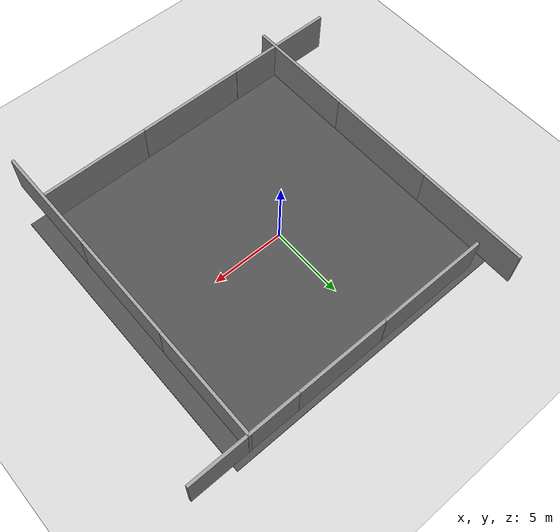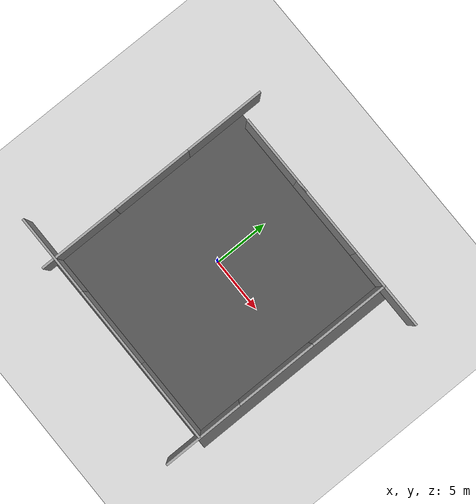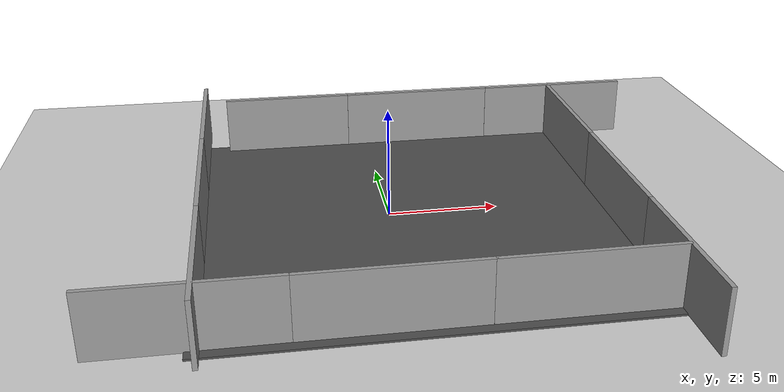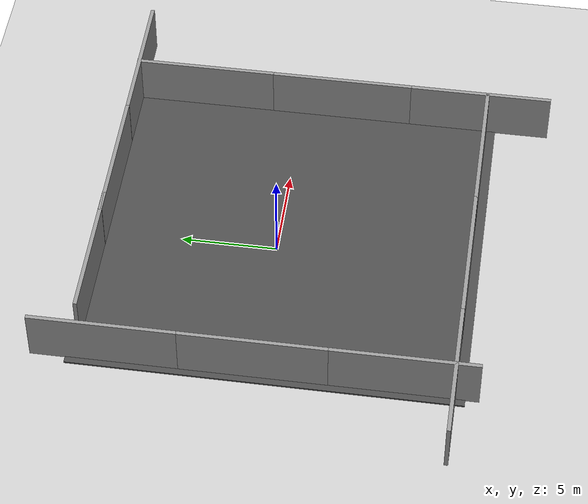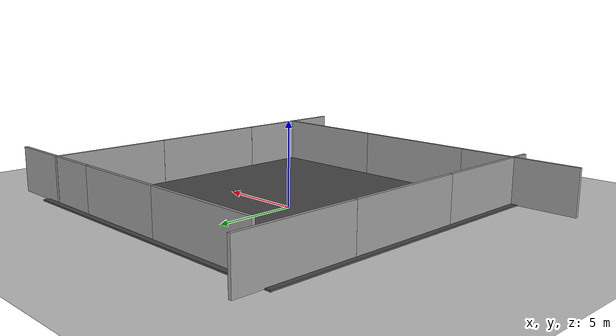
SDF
<sdf version="1.7">
 <world name="default">
  <light name="sun" type="directional">
   <pose>0 0 10 0 -0 0</pose>
   <diffuse>0.8 0.8 0.8 1</diffuse>
   <specular>0.2 0.2 0.2 1</specular>
   <attenuation>
    <range>1000</range>
    <constant>0.9</constant>
    <linear>0.01</linear>
    <quadratic>0.001</quadratic>
   </attenuation>
   <direction>-0.5 0.1 -0.9</direction>
   <spot><inner_angle>0</inner_angle><outer_angle>0</outer_angle><falloff>0</falloff></spot>
  </light>
  <model name="ground_plane">
   <static>1</static>
   <link name="link">
    <collision name="collision">
     <geometry><plane><normal>0 0 1</normal><size>100 100</size></plane></geometry>
     <surface><friction><ode><mu>100</mu><mu2>50</mu2></ode></friction></surface>
    </collision>
    <visual name="visual">
     <cast_shadows>0</cast_shadows>
     <geometry><plane><normal>0 0 1</normal><size>100 100</size></plane></geometry>
     <material>
      <script><uri>file://media/materials/scripts/gazebo.material</uri><name>Gazebo/Grey</name></script>
     </material>
    </visual>
   </link>
  </model>
  <model name="asphalt_plane">
   <pose>1.20666 -0.550621 0 0 -0 0</pose>
   <static>1</static>
   <link name="link">
    <collision name="collision"><geometry><box><size>20 20 0.1</size></box></geometry></collision>
    <visual name="visual">
     <cast_shadows>0</cast_shadows>
     <geometry><box><size>20 20 0.1</size></box></geometry>
     <material>
      <script>
       <uri>model://asphalt_plane/materials/scripts</uri>
       <uri>model://asphalt_plane/materials/textures</uri>
       <name>vrc/asphalt</name>
      </script>
     </material>
    </visual>
   </link>
  </model>
  <plugin name="ros_interface_plugin" filename="librotors_gazebo_ros_interface_plugin.so"/>
  <physics name="default_physics" default="0" type="ode">
   <ode>
    <solver>
     <type>quick</type>
     <iters>10</iters>
     <sor>1.3</sor>
     <use_dynamic_moi_rescaling>0</use_dynamic_moi_rescaling>
    </solver>
    <constraints>
     <cfm>0</cfm>
     <erp>0.2</erp>
     <contact_max_correcting_vel>100</contact_max_correcting_vel>
     <contact_surface_layer>0.001</contact_surface_layer>
    </constraints>
   </ode>
   <max_step_size>0.002</max_step_size>
   <real_time_factor>1</real_time_factor>
   <real_time_update_rate>500</real_time_update_rate>
  </physics>
  <model name="grey_wall">
   <static>1</static>
   <link name="link">
    <pose>0 0 1.4 0 -0 0</pose>
    <collision name="collision"><geometry><box><size>7.5 0.2 2.8</size></box></geometry></collision>
    <visual name="visual">
     <cast_shadows>0</cast_shadows>
     <geometry><box><size>7.5 0.2 2.8</size></box></geometry>
     <material>
      <script>
       <uri>model://grey_wall/materials/scripts</uri>
       <uri>model://grey_wall/materials/textures</uri>
       <name>vrc/grey_wall</name>
      </script>
     </material>
    </visual>
   </link>
   <pose>-8.34545 0 0 0 0 -1.57</pose>
  </model>
  <model name="grey_wall2">
   <static>1</static>
   <link name="link">
    <pose>0 0 1.4 0 -0 0</pose>
    <collision name="collision"><geometry><box><size>7.5 0.2 2.8</size></box></geometry></collision>
    <visual name="visual">
     <cast_shadows>0</cast_shadows>
     <geometry><box><size>7.5 0.2 2.8</size></box></geometry>
     <material>
      <script>
       <uri>model://grey_wall/materials/scripts</uri>
       <uri>model://grey_wall/materials/textures</uri>
       <name>vrc/grey_wall</name>
      </script>
     </material>
    </visual>
   </link>
   <pose>-3.5 9 0 0 -0 0</pose>
  </model>
  <gravity>0 0 -9.8066</gravity>
  <magnetic_field>6e-06 2.3e-05 -4.2e-05</magnetic_field>
  <atmosphere type="adiabatic"/>
  <scene><ambient>0.4 0.4 0.4 1</ambient><background>0.7 0.7 0.7 1</background><shadows>1</shadows></scene>
  <spherical_coordinates>
   <surface_model>EARTH_WGS84</surface_model>
   <latitude_deg>0</latitude_deg>
   <longitude_deg>0</longitude_deg>
   <elevation>0</elevation>
   <heading_deg>0</heading_deg>
  </spherical_coordinates>
  <model name="grey_wall_clone">
   <static>1</static>
   <link name="link">
    <pose>0 0 1.4 0 -0 0</pose>
    <collision name="collision"><geometry><box><size>7.5 0.2 2.8</size></box></geometry></collision>
    <visual name="visual">
     <cast_shadows>0</cast_shadows>
     <geometry><box><size>7.5 0.2 2.8</size></box></geometry>
     <material>
      <script>
       <uri>model://grey_wall/materials/scripts</uri>
       <uri>model://grey_wall/materials/textures</uri>
       <name>vrc/grey_wall</name>
      </script>
     </material>
    </visual>
   </link>
   <pose>-8.33504 -7.48586 0 0 0 -1.57</pose>
  </model>
  <model name="grey_wall_clone_0">
   <static>1</static>
   <link name="link">
    <pose>0 0 1.4 0 -0 0</pose>
    <collision name="collision"><geometry><box><size>7.5 0.2 2.8</size></box></geometry></collision>
    <visual name="visual">
     <cast_shadows>0</cast_shadows>
     <geometry><box><size>7.5 0.2 2.8</size></box></geometry>
     <material>
      <script>
       <uri>model://grey_wall/materials/scripts</uri>
       <uri>model://grey_wall/materials/textures</uri>
       <name>vrc/grey_wall</name>
      </script>
     </material>
    </visual>
   </link>
   <pose>-8.3498 7.49296 0 0 0 -1.57</pose>
  </model>
  <model name="grey_wall2_clone">
   <static>1</static>
   <link name="link">
    <pose>0 0 1.4 0 -0 0</pose>
    <collision name="collision"><geometry><box><size>7.5 0.2 2.8</size></box></geometry></collision>
    <visual name="visual">
     <cast_shadows>0</cast_shadows>
     <geometry><box><size>7.5 0.2 2.8</size></box></geometry>
     <material>
      <script>
       <uri>model://grey_wall/materials/scripts</uri>
       <uri>model://grey_wall/materials/textures</uri>
       <name>vrc/grey_wall</name>
      </script>
     </material>
    </visual>
   </link>
   <pose>2.81264 8.99092 0 0 -0 0</pose>
  </model>
  <model name="grey_wall2_clone_clone">
   <static>1</static>
   <link name="link">
    <pose>0 0 1.4 0 -0 0</pose>
    <collision name="collision"><geometry><box><size>7.5 0.2 2.8</size></box></geometry></collision>
    <visual name="visual">
     <cast_shadows>0</cast_shadows>
     <geometry><box><size>7.5 0.2 2.8</size></box></geometry>
     <material>
      <script>
       <uri>model://grey_wall/materials/scripts</uri>
       <uri>model://grey_wall/materials/textures</uri>
       <name>vrc/grey_wall</name>
      </script>
     </material>
    </visual>
   </link>
   <pose>10.269 8.98523 0 0 -0 0</pose>
  </model>
  <model name="grey_wall_clone_1">
   <static>1</static>
   <link name="link">
    <pose>0 0 1.4 0 -0 0</pose>
    <collision name="collision"><geometry><box><size>7.5 0.2 2.8</size></box></geometry></collision>
    <visual name="visual">
     <cast_shadows>0</cast_shadows>
     <geometry><box><size>7.5 0.2 2.8</size></box></geometry>
     <material>
      <script>
       <uri>model://grey_wall/materials/scripts</uri>
       <uri>model://grey_wall/materials/textures</uri>
       <name>vrc/grey_wall</name>
      </script>
     </material>
    </visual>
   </link>
   <pose>10.0049 5.34607 0 0 0 -1.57</pose>
  </model>
  <model name="grey_wall_clone_1_clone">
   <static>1</static>
   <link name="link">
    <pose>0 0 1.4 0 -0 0</pose>
    <collision name="collision"><geometry><box><size>7.5 0.2 2.8</size></box></geometry></collision>
    <visual name="visual">
     <cast_shadows>0</cast_shadows>
     <geometry><box><size>7.5 0.2 2.8</size></box></geometry>
     <material>
      <script>
       <uri>model://grey_wall/materials/scripts</uri>
       <uri>model://grey_wall/materials/textures</uri>
       <name>vrc/grey_wall</name>
      </script>
     </material>
    </visual>
   </link>
   <pose>10.004 -2.12753 0 0 0 -1.57</pose>
  </model>
  <model name="grey_wall_clone_1_clone_clone">
   <static>1</static>
   <link name="link">
    <pose>0 0 1.4 0 -0 0</pose>
    <collision name="collision"><geometry><box><size>7.5 0.2 2.8</size></box></geometry></collision>
    <visual name="visual">
     <cast_shadows>0</cast_shadows>
     <geometry><box><size>7.5 0.2 2.8</size></box></geometry>
     <material>
      <script>
       <uri>model://grey_wall/materials/scripts</uri>
       <uri>model://grey_wall/materials/textures</uri>
       <name>vrc/grey_wall</name>
      </script>
     </material>
    </visual>
   </link>
   <pose>10.0066 -9.61547 0 0 0 -1.57</pose>
  </model>
  <model name="grey_wall2_clone_clone_0">
   <static>1</static>
   <link name="link">
    <pose>0 0 1.4 0 -0 0</pose>
    <collision name="collision"><geometry><box><size>7.5 0.2 2.8</size></box></geometry></collision>
    <visual name="visual">
     <cast_shadows>0</cast_shadows>
     <geometry><box><size>7.5 0.2 2.8</size></box></geometry>
     <material>
      <script>
       <uri>model://grey_wall/materials/scripts</uri>
       <uri>model://grey_wall/materials/textures</uri>
       <name>vrc/grey_wall</name>
      </script>
     </material>
    </visual>
   </link>
   <pose>6.2557 -9.98533 0 0 -0 0</pose>
  </model>
  <model name="grey_wall2_clone_clone_0_clone">
   <static>1</static>
   <link name="link">
    <pose>0 0 1.4 0 -0 0</pose>
    <collision name="collision"><geometry><box><size>7.5 0.2 2.8</size></box></geometry></collision>
    <visual name="visual">
     <cast_shadows>0</cast_shadows>
     <geometry><box><size>7.5 0.2 2.8</size></box></geometry>
     <material>
      <script>
       <uri>model://grey_wall/materials/scripts</uri>
       <uri>model://grey_wall/materials/textures</uri>
       <name>vrc/grey_wall</name>
      </script>
     </material>
    </visual>
   </link>
   <pose>-1.17047 -9.98195 0 0 -0 0</pose>
  </model>
  <model name="grey_wall2_clone_clone_0_clone_clone">
   <static>1</static>
   <link name="link">
    <pose>0 0 1.4 0 -0 0</pose>
    <collision name="collision"><geometry><box><size>7.5 0.2 2.8</size></box></geometry></collision>
    <visual name="visual">
     <cast_shadows>0</cast_shadows>
     <geometry><box><size>7.5 0.2 2.8</size></box></geometry>
     <material>
      <script>
       <uri>model://grey_wall/materials/scripts</uri>
       <uri>model://grey_wall/materials/textures</uri>
       <name>vrc/grey_wall</name>
      </script>
     </material>
    </visual>
   </link>
   <pose>-8.63878 -9.97412 0 0 -0 0</pose>
  </model>
 </world>
</sdf>
